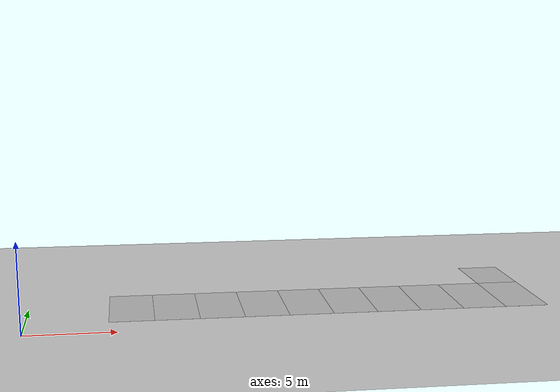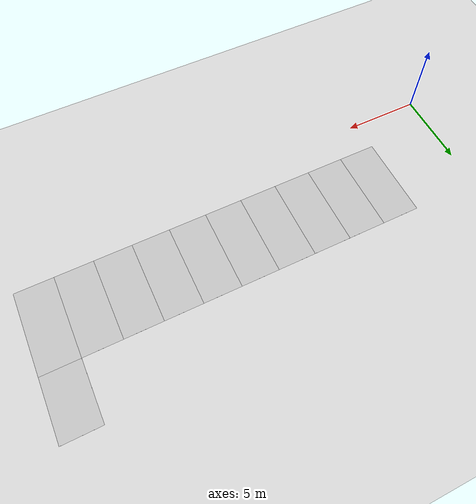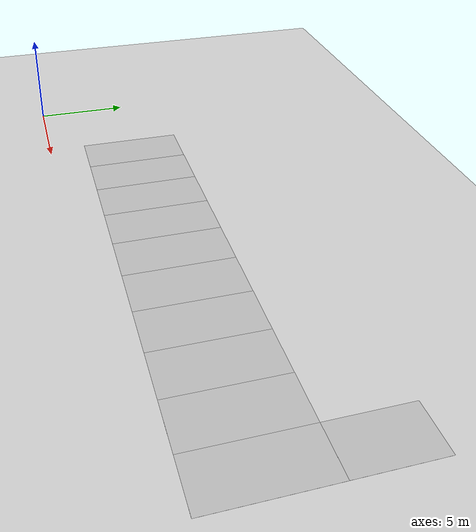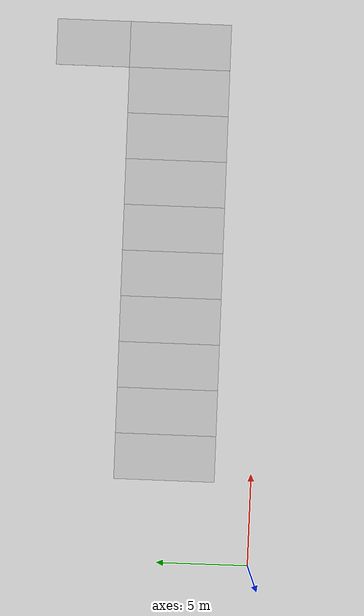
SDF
<sdf version="1.6">
 <world name="default">
  <light name="sun" type="directional">
   <pose>0 0 10 0 -0 0</pose>
   <diffuse>0.8 0.8 0.8 1</diffuse>
   <specular>0.2 0.2 0.2 1</specular>
   <attenuation>
    <range>1000</range>
    <constant>0.9</constant>
    <linear>0.01</linear>
    <quadratic>0.001</quadratic>
   </attenuation>
   <direction>-0.5 0.1 -0.9</direction>
  </light>
  <model name="ground_plane">
   <static>1</static>
   <link name="link">
    <collision name="collision">
     <geometry><plane><normal>0 0 1</normal><size>1000 100</size></plane></geometry>
     <surface>
      <contact><collide_bitmask>65535</collide_bitmask></contact>
      <friction><ode><mu>100</mu><mu2>50</mu2></ode></friction>
     </surface>
    </collision>
    <visual name="visual">
     <cast_shadows>0</cast_shadows>
     <geometry><plane><normal>0 0 1</normal><size>1000 100</size></plane></geometry>
     <material>
      <script><uri>file://media/materials/scripts/gazebo.material</uri><name>Gazebo/Grey</name></script>
     </material>
    </visual>
   </link>
  </model>
  <gravity>0 0 -9.8</gravity>
  <magnetic_field>6e-06 2.3e-05 -4.2e-05</magnetic_field>
  <atmosphere type="adiabatic"/>
  <physics name="default_physics" default="0" type="ode">
   <max_step_size>0.001</max_step_size>
   <real_time_factor>1</real_time_factor>
   <real_time_update_rate>1000</real_time_update_rate>
  </physics>
  <scene><ambient>0.4 0.4 0.4 1</ambient><background>0.7 0.7 0.7 1</background><shadows>1</shadows></scene>
  <spherical_coordinates>
   <surface_model>EARTH_WGS84</surface_model>
   <latitude_deg>0</latitude_deg>
   <longitude_deg>0</longitude_deg>
   <elevation>0</elevation>
   <heading_deg>0</heading_deg>
  </spherical_coordinates>
  <model name="parking_slot">
   <static>1</static>
   <link name="link">
    <collision name="collision">
     <geometry><plane><normal>0 0 1</normal><size>5.5 2.5</size></plane></geometry>
     <surface><friction><ode><mu>100</mu><mu2>50</mu2></ode></friction></surface>
    </collision>
    <visual name="visual">
     <cast_shadows>0</cast_shadows>
     <geometry><plane><normal>0 0 1</normal><size>5.5 2.5</size></plane></geometry>
     <material>
      <script>
       <uri>model://parking_slot/materials/scripts</uri>
       <uri>model://parking_slot/materials/textures/</uri>
       <name>MyGroundPlane/Image</name>
      </script>
     </material>
    </visual>
   </link>
   <pose>28.25 4.75 0 0 -0 1.57</pose>
  </model>
  <model name="parking_slot_0">
   <static>1</static>
   <link name="link">
    <collision name="collision">
     <geometry><plane><normal>0 0 1</normal><size>5.5 2.5</size></plane></geometry>
     <surface><friction><ode><mu>100</mu><mu2>50</mu2></ode></friction></surface>
    </collision>
    <visual name="visual">
     <cast_shadows>0</cast_shadows>
     <geometry><plane><normal>0 0 1</normal><size>5.5 2.5</size></plane></geometry>
     <material>
      <script>
       <uri>model://parking_slot/materials/scripts</uri>
       <uri>model://parking_slot/materials/textures/</uri>
       <name>MyGroundPlane/Image</name>
      </script>
     </material>
    </visual>
   </link>
   <pose>25.75 4.75 0 0 -0 1.57</pose>
  </model>
  <model name="parking_slot_2">
   <static>1</static>
   <link name="link">
    <collision name="collision">
     <geometry><plane><normal>0 0 1</normal><size>5.5 2.5</size></plane></geometry>
     <surface><friction><ode><mu>100</mu><mu2>50</mu2></ode></friction></surface>
    </collision>
    <visual name="visual">
     <cast_shadows>0</cast_shadows>
     <geometry><plane><normal>0 0 1</normal><size>5.5 2.5</size></plane></geometry>
     <material>
      <script>
       <uri>model://parking_slot/materials/scripts</uri>
       <uri>model://parking_slot/materials/textures/</uri>
       <name>MyGroundPlane/Image</name>
      </script>
     </material>
    </visual>
   </link>
   <pose>23.25 4.75 0 0 -0 1.57</pose>
  </model>
  <model name="parking_slot_3">
   <static>1</static>
   <link name="link">
    <collision name="collision">
     <geometry><plane><normal>0 0 1</normal><size>5.5 2.5</size></plane></geometry>
     <surface><friction><ode><mu>100</mu><mu2>50</mu2></ode></friction></surface>
    </collision>
    <visual name="visual">
     <cast_shadows>0</cast_shadows>
     <geometry><plane><normal>0 0 1</normal><size>5.5 2.5</size></plane></geometry>
     <material>
      <script>
       <uri>model://parking_slot/materials/scripts</uri>
       <uri>model://parking_slot/materials/textures/</uri>
       <name>MyGroundPlane/Image</name>
      </script>
     </material>
    </visual>
   </link>
   <pose>20.75 4.75 0 0 -0 1.57</pose>
  </model>
  <model name="parking_slot_4">
   <static>1</static>
   <link name="link">
    <collision name="collision">
     <geometry><plane><normal>0 0 1</normal><size>5.5 2.5</size></plane></geometry>
     <surface><friction><ode><mu>100</mu><mu2>50</mu2></ode></friction></surface>
    </collision>
    <visual name="visual">
     <cast_shadows>0</cast_shadows>
     <geometry><plane><normal>0 0 1</normal><size>5.5 2.5</size></plane></geometry>
     <material>
      <script>
       <uri>model://parking_slot/materials/scripts</uri>
       <uri>model://parking_slot/materials/textures/</uri>
       <name>MyGroundPlane/Image</name>
      </script>
     </material>
    </visual>
   </link>
   <pose>18.25 4.75 0 0 -0 1.57</pose>
  </model>
  <model name="parking_slot_5">
   <static>1</static>
   <link name="link">
    <collision name="collision">
     <geometry><plane><normal>0 0 1</normal><size>5.5 2.5</size></plane></geometry>
     <surface><friction><ode><mu>100</mu><mu2>50</mu2></ode></friction></surface>
    </collision>
    <visual name="visual">
     <cast_shadows>0</cast_shadows>
     <geometry><plane><normal>0 0 1</normal><size>5.5 2.5</size></plane></geometry>
     <material>
      <script>
       <uri>model://parking_slot/materials/scripts</uri>
       <uri>model://parking_slot/materials/textures/</uri>
       <name>MyGroundPlane/Image</name>
      </script>
     </material>
    </visual>
   </link>
   <pose>15.75 4.75 0 0 -0 1.57</pose>
  </model>
  <model name="parking_slot_6">
   <static>1</static>
   <link name="link">
    <collision name="collision">
     <geometry><plane><normal>0 0 1</normal><size>5.5 2.5</size></plane></geometry>
     <surface><friction><ode><mu>100</mu><mu2>50</mu2></ode></friction></surface>
    </collision>
    <visual name="visual">
     <cast_shadows>0</cast_shadows>
     <geometry><plane><normal>0 0 1</normal><size>5.5 2.5</size></plane></geometry>
     <material>
      <script>
       <uri>model://parking_slot/materials/scripts</uri>
       <uri>model://parking_slot/materials/textures/</uri>
       <name>MyGroundPlane/Image</name>
      </script>
     </material>
    </visual>
   </link>
   <pose>13.25 4.75 0 0 -0 1.57</pose>
  </model>
  <model name="parking_slot_7">
   <static>1</static>
   <link name="link">
    <collision name="collision">
     <geometry><plane><normal>0 0 1</normal><size>5.5 2.5</size></plane></geometry>
     <surface><friction><ode><mu>100</mu><mu2>50</mu2></ode></friction></surface>
    </collision>
    <visual name="visual">
     <cast_shadows>0</cast_shadows>
     <geometry><plane><normal>0 0 1</normal><size>5.5 2.5</size></plane></geometry>
     <material>
      <script>
       <uri>model://parking_slot/materials/scripts</uri>
       <uri>model://parking_slot/materials/textures/</uri>
       <name>MyGroundPlane/Image</name>
      </script>
     </material>
    </visual>
   </link>
   <pose>10.75 4.75 0 0 -0 1.57</pose>
  </model>
  <model name="parking_slot_8">
   <static>1</static>
   <link name="link">
    <collision name="collision">
     <geometry><plane><normal>0 0 1</normal><size>5.5 2.5</size></plane></geometry>
     <surface><friction><ode><mu>100</mu><mu2>50</mu2></ode></friction></surface>
    </collision>
    <visual name="visual">
     <cast_shadows>0</cast_shadows>
     <geometry><plane><normal>0 0 1</normal><size>5.5 2.5</size></plane></geometry>
     <material>
      <script>
       <uri>model://parking_slot/materials/scripts</uri>
       <uri>model://parking_slot/materials/textures/</uri>
       <name>MyGroundPlane/Image</name>
      </script>
     </material>
    </visual>
   </link>
   <pose>8.25 4.75 0 0 -0 1.57</pose>
  </model>
  <model name="parking_slot_9">
   <static>1</static>
   <link name="link">
    <collision name="collision">
     <geometry><plane><normal>0 0 1</normal><size>5.5 2.5</size></plane></geometry>
     <surface><friction><ode><mu>100</mu><mu2>50</mu2></ode></friction></surface>
    </collision>
    <visual name="visual">
     <cast_shadows>0</cast_shadows>
     <geometry><plane><normal>0 0 1</normal><size>5.5 2.5</size></plane></geometry>
     <material>
      <script>
       <uri>model://parking_slot/materials/scripts</uri>
       <uri>model://parking_slot/materials/textures/</uri>
       <name>MyGroundPlane/Image</name>
      </script>
     </material>
    </visual>
   </link>
   <pose>5.75 4.75 0 0 -0 1.57</pose>
  </model>
  <model name="steerbot_road">
   <static>1</static>
   <link name="link">
    <collision name="collision">
     <geometry><plane><normal>0 0 1</normal><size>2.5 4</size></plane></geometry>
     <surface><friction><ode><mu>100</mu><mu2>50</mu2></ode></friction></surface>
    </collision>
    <visual name="visual">
     <cast_shadows>0</cast_shadows>
     <geometry><plane><normal>0 0 1</normal><size>2.5 4</size></plane></geometry>
     <material>
      <script>
       <uri>model://steerbot_road/materials/scripts</uri>
       <uri>model://steerbot_road/materials/textures/</uri>
       <name>RoadSteerbot/Image</name>
      </script>
     </material>
    </visual>
   </link>
   <pose>28.25 9.5 0 0 -0 0</pose>
  </model>
 </world>
</sdf>
